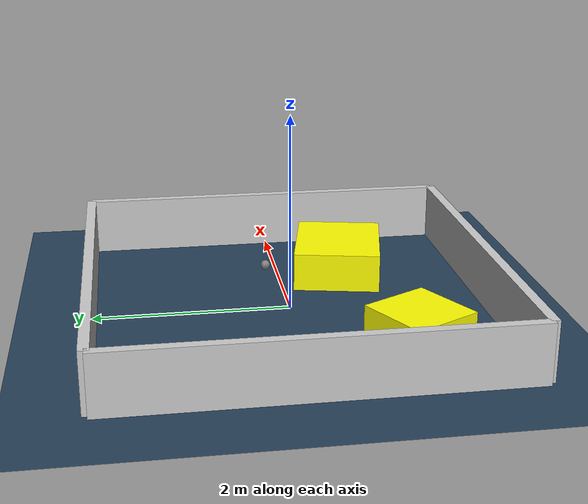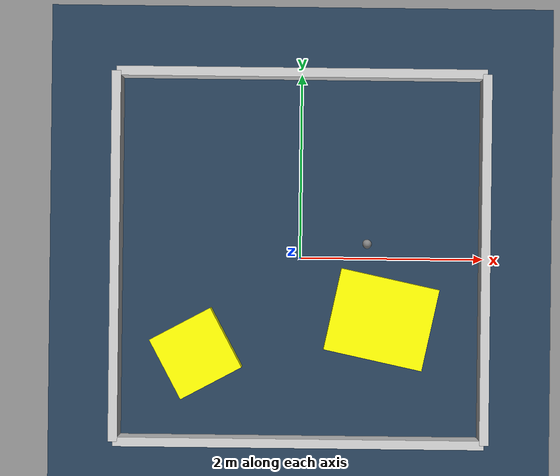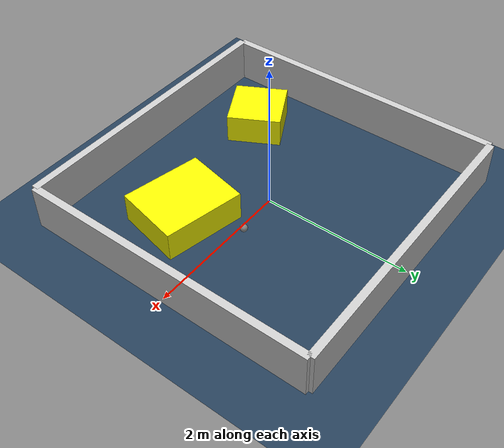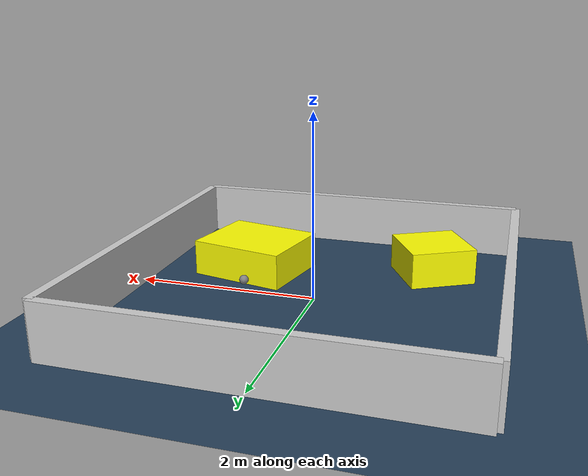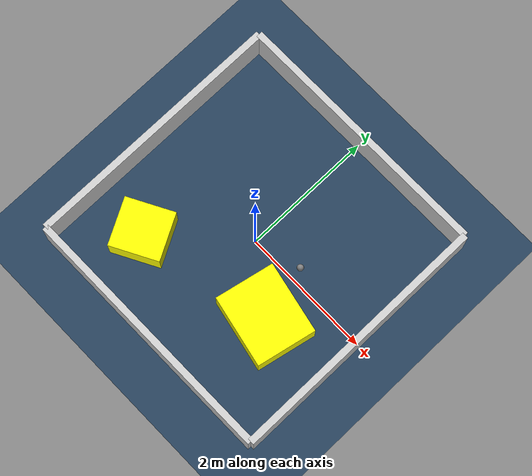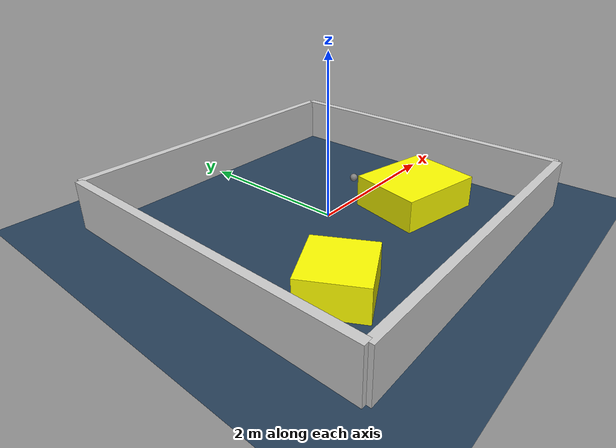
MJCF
<?xml version="1.0" ?>
<mujoco model="generated_environment">
  <option timestep="0.01" integrator="RK4" cone="elliptic"/>
  <default>
    <geom density="1"/>
  </default>
  <asset>
    <texture builtin="gradient" height="3072" rgb1="0.3 0.5 0.7" rgb2="0 0 0" type="skybox" width="512"/>
    <texture builtin="checker" height="300" mark="edge" markrgb="0.8 0.8 0.8" name="groundplane" rgb1="0.2 0.3 0.4" rgb2="0.1 0.2 0.3" type="2d" width="300"/>
    <material name="groundplane" reflectance="0.2" texrepeat="5 5" texture="groundplane" texuniform="true"/>
    <material name="robot" rgba="0.0 1.0 0.0 1"/>
  </asset>
  <worldbody>
    <light dir="0 0 -1" directional="true" pos="0 0 1.5"/>
    <geom condim="4" friction="1.0 0.005 0.001" material="groundplane" name="floor" size="0 0 0.05" type="plane"/>
    <body name="walls">
      <geom name="wall_1" condim="4" pos="-2.0 0.0 0.3" rgba="0.800000011920929 0.800000011920929 0.800000011920929 1.0" size="0.05 2.0 0.3" type="box"/>
      <geom name="wall_2" condim="4" pos="2.0 0.0 0.3" rgba="0.800000011920929 0.800000011920929 0.800000011920929 1.0" size="0.05 2.0 0.3" type="box"/>
      <geom name="wall_3" condim="4" pos="0.0 -2.0 0.3" rgba="0.800000011920929 0.800000011920929 0.800000011920929 1.0" size="2.0 0.05 0.3" type="box"/>
      <geom name="wall_4" condim="4" pos="0.0 2.0 0.3" rgba="0.800000011920929 0.800000011920929 0.800000011920929 1.0" size="2.0 0.05 0.3" type="box"/>
    </body>
    <body name="robot">
      <joint name="joint_x" type="slide" pos="0 0 0" axis="1 0 0"/>
      <joint name="joint_y" type="slide" pos="0 0 0" axis="0 1 0"/>
      <geom name="robot" type="sphere" pos="0.7260118038848291 0.1582871728666 0.2" size="0.05" mass="5." friction="1.0 0.005 0.0001" condim="4"/>
      <site name="sensor_ball"/>
    </body>
    <body name="obstacle_1_movable">
      <geom name="obstacle_1_movable" condim="4" pos="-1.126078610023878 -1.0510652973140462 0.2" euler="0 0 298.32493487525414" friction="1.0 0.005 0.001" rgba="1 1 0 1" size="0.36456609048602656 0.3740115281195554 0.2" type="box" mass="0.1"/>
      <joint type="free"/>
    </body>
    <body name="obstacle_2_movable">
      <geom name="obstacle_2_movable" condim="4" pos="0.8884710984153554 -0.661792753959413 0.2" euler="0 0 167.9770370694286" friction="1.0 0.005 0.001" rgba="1 1 0 1" size="0.5441482769195733 0.45098012756716377 0.2" type="box" mass="0.1"/>
      <joint type="free"/>
    </body>
  </worldbody>
  <actuator>
    <motor name="actuator_x" joint="joint_x" gear="1" ctrlrange="-1 1"/>
    <motor name="actuator_y" joint="joint_y" gear="1" ctrlrange="-1 1"/>
  </actuator>
</mujoco>
